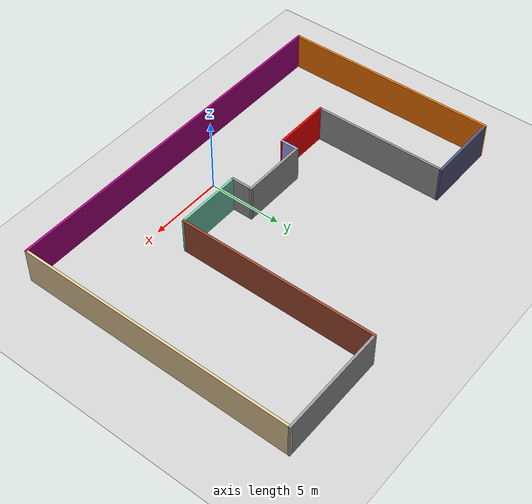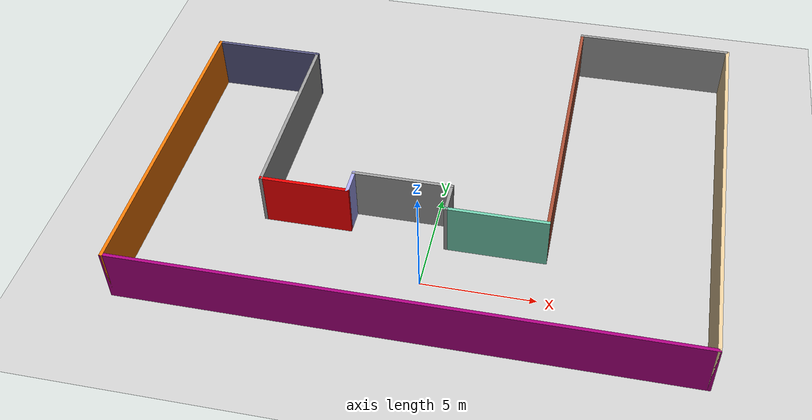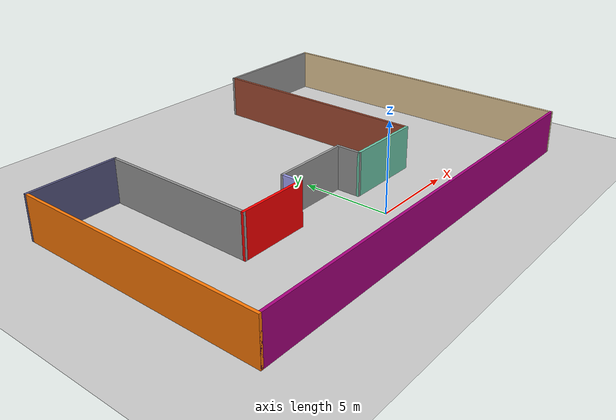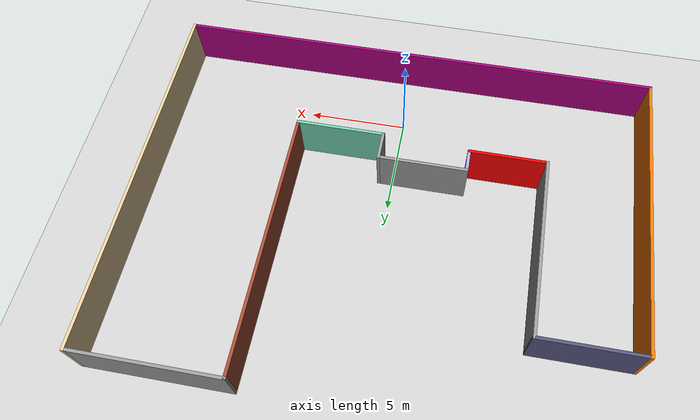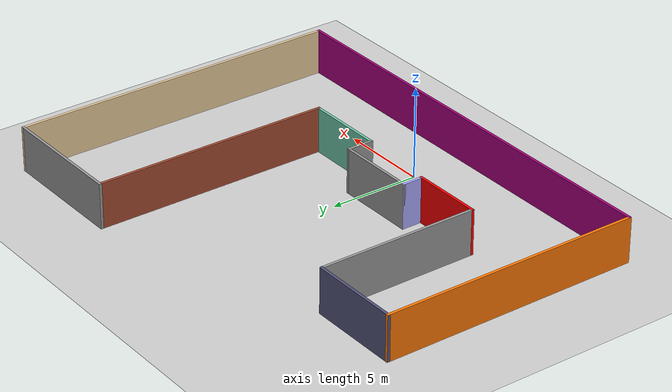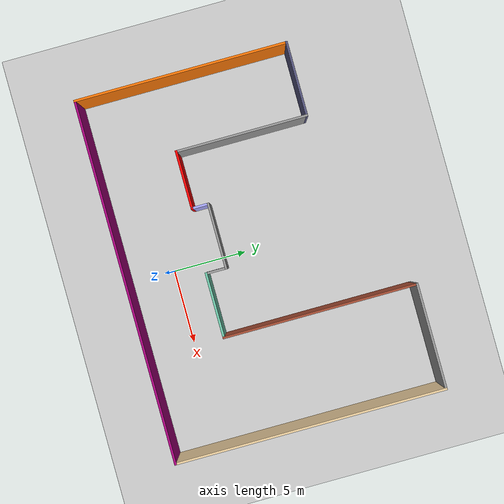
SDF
<sdf version="1.6">
 <world name="default">
  <light name="sun" type="directional">
   <pose>0 0 10 0 -0 0</pose>
   <diffuse>0.8 0.8 0.8 1</diffuse>
   <specular>0.2 0.2 0.2 1</specular>
   <attenuation>
    <range>1000</range>
    <constant>0.9</constant>
    <linear>0.01</linear>
    <quadratic>0.001</quadratic>
   </attenuation>
   <direction>-0.5 0.1 -0.9</direction>
  </light>
  <model name="ground_plane">
   <static>1</static>
   <link name="link">
    <collision name="collision">
     <geometry><plane><normal>0 0 1</normal><size>100 100</size></plane></geometry>
     <surface>
      <contact><collide_bitmask>65535</collide_bitmask></contact>
      <friction><ode><mu>100</mu><mu2>50</mu2></ode></friction>
     </surface>
    </collision>
    <visual name="visual">
     <cast_shadows>0</cast_shadows>
     <geometry><plane><normal>0 0 1</normal><size>100 100</size></plane></geometry>
     <material>
      <script><uri>file://media/materials/scripts/gazebo.material</uri><name>Gazebo/Grey</name></script>
     </material>
    </visual>
   </link>
  </model>
  <gravity>0 0 -9.8</gravity>
  <magnetic_field>6e-06 2.3e-05 -4.2e-05</magnetic_field>
  <atmosphere type="adiabatic"/>
  <physics name="default_physics" default="0" type="ode">
   <max_step_size>0.001</max_step_size>
   <real_time_factor>1</real_time_factor>
   <real_time_update_rate>1000</real_time_update_rate>
  </physics>
  <scene><ambient>0.4 0.4 0.4 1</ambient><background>0.7 0.7 0.7 1</background><shadows>1</shadows></scene>
  <spherical_coordinates>
   <surface_model>EARTH_WGS84</surface_model>
   <latitude_deg>0</latitude_deg>
   <longitude_deg>0</longitude_deg>
   <elevation>0</elevation>
   <heading_deg>0</heading_deg>
  </spherical_coordinates>
  <model name="testbuilding">
   <pose>-0.154996 6.14227 0 0 -0 0</pose>
   <link name="Wall_10">
    <collision name="Wall_10_Collision">
     <geometry><box><size>1.5 0.15 2.5</size></box></geometry>
     <pose>0 0 1.25 0 -0 0</pose>
    </collision>
    <visual name="Wall_10_Visual">
     <pose>0 0 1.25 0 -0 0</pose>
     <geometry><box><size>1.5 0.15 2.5</size></box></geometry>
     <material>
      <script><uri>file://media/materials/scripts/gazebo.material</uri><name>Gazebo/Grey</name></script>
      <ambient>1 1 1 1</ambient>
     </material>
     <meta><layer>0</layer></meta>
    </visual>
    <pose>0.85 -3.25 0 0 -0 1.5708</pose>
   </link>
   <link name="Wall_11">
    <collision name="Wall_11_Collision">
     <geometry><box><size>4.5 0.15 2.5</size></box></geometry>
     <pose>0 0 1.25 0 -0 0</pose>
    </collision>
    <visual name="Wall_11_Visual">
     <pose>0 0 1.25 0 -0 0</pose>
     <geometry><box><size>4.5 0.15 2.5</size></box></geometry>
     <material>
      <script><uri>file://media/materials/scripts/gazebo.material</uri><name>Gazebo/Grey</name></script>
      <ambient>1 1 1 1</ambient>
     </material>
     <meta><layer>0</layer></meta>
    </visual>
    <pose>-1.325 -2.575 0 0 -0 3.14159</pose>
   </link>
   <link name="Wall_12">
    <collision name="Wall_12_Collision">
     <geometry><box><size>1.25 0.15 2.5</size></box></geometry>
     <pose>0 0 1.25 0 -0 0</pose>
    </collision>
    <visual name="Wall_12_Visual">
     <pose>0 0 1.25 0 -0 0</pose>
     <geometry><box><size>1.25 0.15 2.5</size></box></geometry>
     <material>
      <script><uri>file://media/materials/scripts/gazebo.material</uri><name>Gazebo/Grey</name></script>
      <ambient>0.666667 0.666667 1 1</ambient>
     </material>
     <meta><layer>0</layer></meta>
    </visual>
    <pose>-3.5 -3.125 0 0 0 -1.5708</pose>
   </link>
   <link name="Wall_13">
    <collision name="Wall_13_Collision">
     <geometry><box><size>4 0.15 2.5</size></box></geometry>
     <pose>0 0 1.25 0 -0 0</pose>
    </collision>
    <visual name="Wall_13_Visual">
     <pose>0 0 1.25 0 -0 0</pose>
     <geometry><box><size>4 0.15 2.5</size></box></geometry>
     <material>
      <script><uri>file://media/materials/scripts/gazebo.material</uri><name>Gazebo/Grey</name></script>
      <ambient>1 0 0 1</ambient>
     </material>
     <meta><layer>0</layer></meta>
    </visual>
    <pose>-5.425 -3.675 0 0 -0 3.14159</pose>
   </link>
   <link name="Wall_14">
    <collision name="Wall_14_Collision">
     <geometry><box><size>9 0.15 2.5</size></box></geometry>
     <pose>0 0 1.25 0 -0 0</pose>
    </collision>
    <visual name="Wall_14_Visual">
     <pose>0 0 1.25 0 -0 0</pose>
     <geometry><box><size>9 0.15 2.5</size></box></geometry>
     <material>
      <script><uri>file://media/materials/scripts/gazebo.material</uri><name>Gazebo/Grey</name></script>
      <ambient>1 1 1 1</ambient>
     </material>
     <meta><layer>0</layer></meta>
    </visual>
    <pose>-7.35 0.75 0 0 -0 1.5708</pose>
   </link>
   <link name="Wall_15">
    <collision name="Wall_15_Collision">
     <geometry><box><size>5.1 0.15 2.5</size></box></geometry>
     <pose>0 0 1.25 0 -0 0</pose>
    </collision>
    <visual name="Wall_15_Visual">
     <pose>0 0 1.25 0 -0 0</pose>
     <geometry><box><size>5.1 0.15 2.5</size></box></geometry>
     <material>
      <script><uri>file://media/materials/scripts/gazebo.material</uri><name>Gazebo/Grey</name></script>
      <ambient>0.333333 0.333333 0.498039 1</ambient>
     </material>
     <meta><layer>0</layer></meta>
    </visual>
    <pose>-9.825 5.175 0 0 0 -3.14159</pose>
   </link>
   <link name="Wall_4">
    <collision name="Wall_4_Collision">
     <geometry><box><size>14.5 0.15 2.5</size></box></geometry>
     <pose>0 0 1.25 0 -0 0</pose>
    </collision>
    <visual name="Wall_4_Visual">
     <pose>0 0 1.25 0 -0 0</pose>
     <geometry><box><size>14.5 0.15 2.5</size></box></geometry>
     <material>
      <script><uri>file://media/materials/scripts/gazebo.material</uri><name>Gazebo/Grey</name></script>
      <ambient>0.996078 0.47451 0.0196078 1</ambient>
     </material>
     <meta><layer>0</layer></meta>
    </visual>
    <pose>-12.3 -2 0 0 0 -1.5708</pose>
   </link>
   <link name="Wall_5">
    <collision name="Wall_5_Collision">
     <geometry><box><size>24.75 0.15 2.5</size></box></geometry>
     <pose>0 0 1.25 0 -0 0</pose>
    </collision>
    <visual name="Wall_5_Visual">
     <pose>0 0 1.25 0 -0 0</pose>
     <geometry><box><size>24.75 0.15 2.5</size></box></geometry>
     <material>
      <script><uri>file://media/materials/scripts/gazebo.material</uri><name>Gazebo/Grey</name></script>
      <ambient>0.666667 0 0.498039 1</ambient>
     </material>
     <meta><layer>0</layer></meta>
    </visual>
    <pose>0 -9.175 0 0 -0 0</pose>
   </link>
   <link name="Wall_6">
    <collision name="Wall_6_Collision">
     <geometry><box><size>18.5 0.15 2.5</size></box></geometry>
     <pose>0 0 1.25 0 -0 0</pose>
    </collision>
    <visual name="Wall_6_Visual">
     <pose>0 0 1.25 0 -0 0</pose>
     <geometry><box><size>18.5 0.15 2.5</size></box></geometry>
     <material>
      <script><uri>file://media/materials/scripts/gazebo.material</uri><name>Gazebo/Grey</name></script>
      <ambient>0.921569 0.807843 0.615686 1</ambient>
     </material>
     <meta><layer>0</layer></meta>
    </visual>
    <pose>12.3 0 0 0 -0 1.5708</pose>
   </link>
   <link name="Wall_7">
    <collision name="Wall_7_Collision">
     <geometry><box><size>7.25 0.15 2.5</size></box></geometry>
     <pose>0 0 1.25 0 -0 0</pose>
    </collision>
    <visual name="Wall_7_Visual">
     <pose>0 0 1.25 0 -0 0</pose>
     <geometry><box><size>7.25 0.15 2.5</size></box></geometry>
     <material>
      <script><uri>file://media/materials/scripts/gazebo.material</uri><name>Gazebo/Grey</name></script>
      <ambient>0 0 0 1</ambient>
     </material>
     <meta><layer>0</layer></meta>
    </visual>
    <pose>8.75 9.175 0 0 -0 3.14159</pose>
   </link>
   <link name="Wall_8">
    <collision name="Wall_8_Collision">
     <geometry><box><size>13.25 0.15 2.5</size></box></geometry>
     <pose>0 0 1.25 0 -0 0</pose>
    </collision>
    <visual name="Wall_8_Visual">
     <pose>0 0 1.25 0 -0 0</pose>
     <geometry><box><size>13.25 0.15 2.5</size></box></geometry>
     <material>
      <script><uri>file://media/materials/scripts/gazebo.material</uri><name>Gazebo/Bricks</name></script>
      <ambient>1 1 1 1</ambient>
     </material>
     <meta><layer>0</layer></meta>
    </visual>
    <pose>5.2 2.625 0 0 0 -1.5708</pose>
   </link>
   <link name="Wall_9">
    <collision name="Wall_9_Collision">
     <geometry><box><size>4.5 0.15 2.5</size></box></geometry>
     <pose>0 0 1.25 0 -0 0</pose>
    </collision>
    <visual name="Wall_9_Visual">
     <pose>0 0 1.25 0 -0 0</pose>
     <geometry><box><size>4.5 0.15 2.5</size></box></geometry>
     <material>
      <script><uri>file://media/materials/scripts/gazebo.material</uri><name>Gazebo/Grey</name></script>
      <ambient>0.435294 0.796078 0.67451 1</ambient>
     </material>
     <meta><layer>0</layer></meta>
    </visual>
    <pose>3.025 -3.925 0 0 -0 3.14159</pose>
   </link>
   <static>1</static>
  </model>
 </world>
</sdf>
